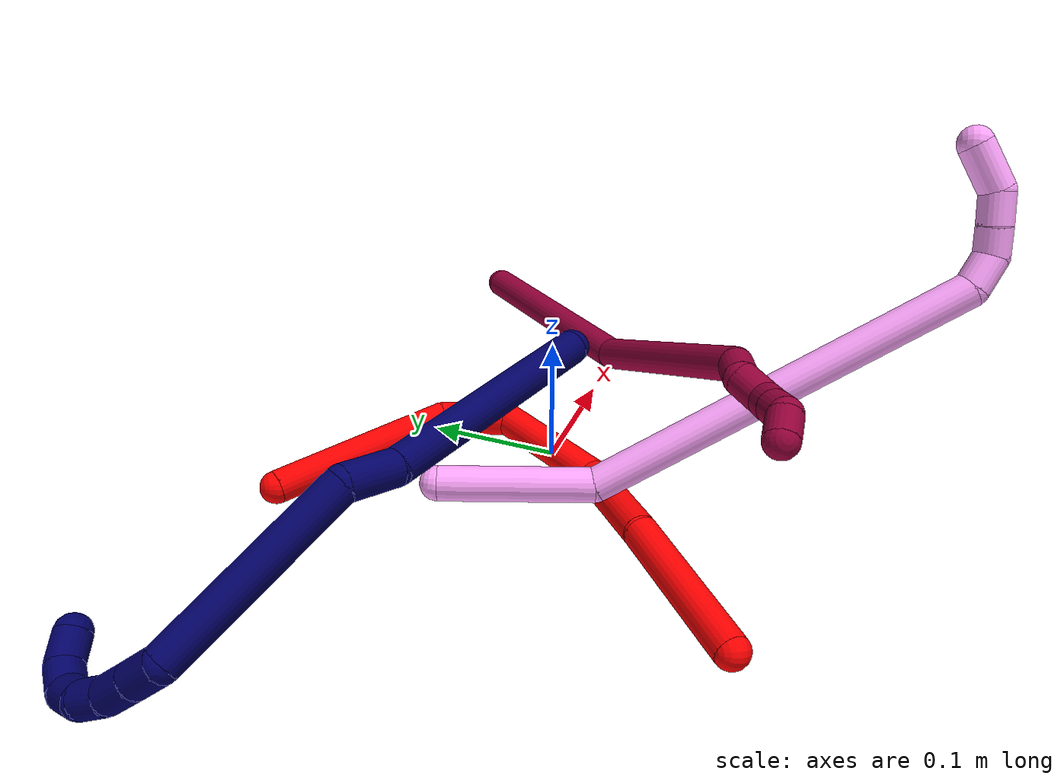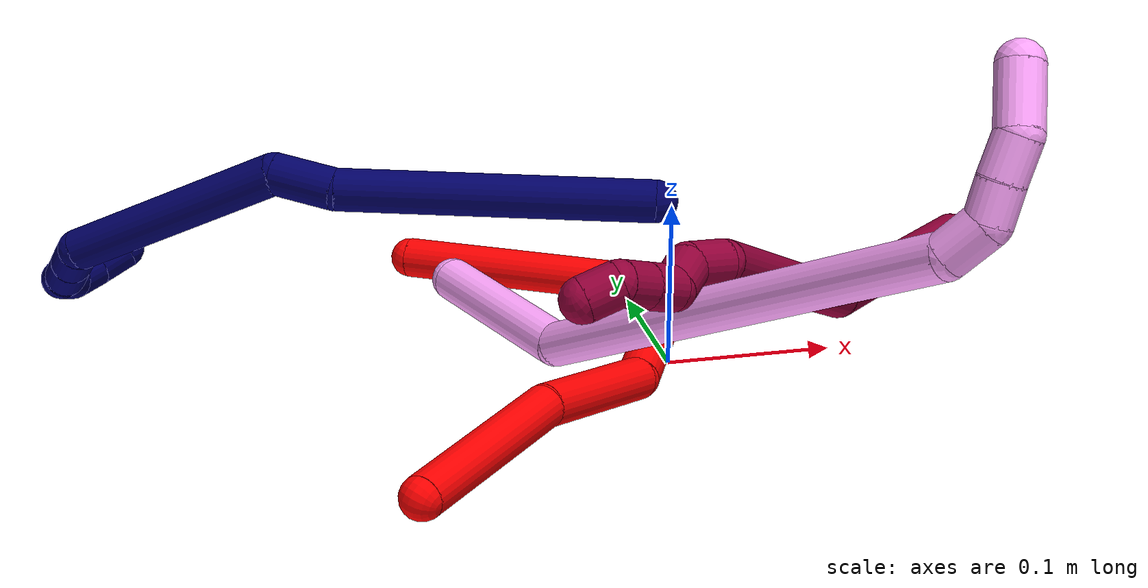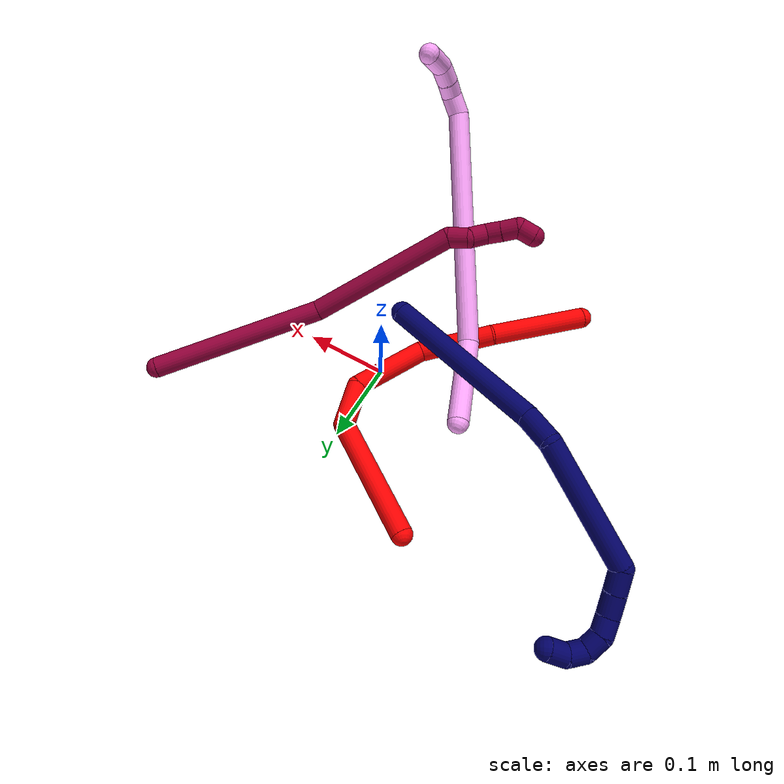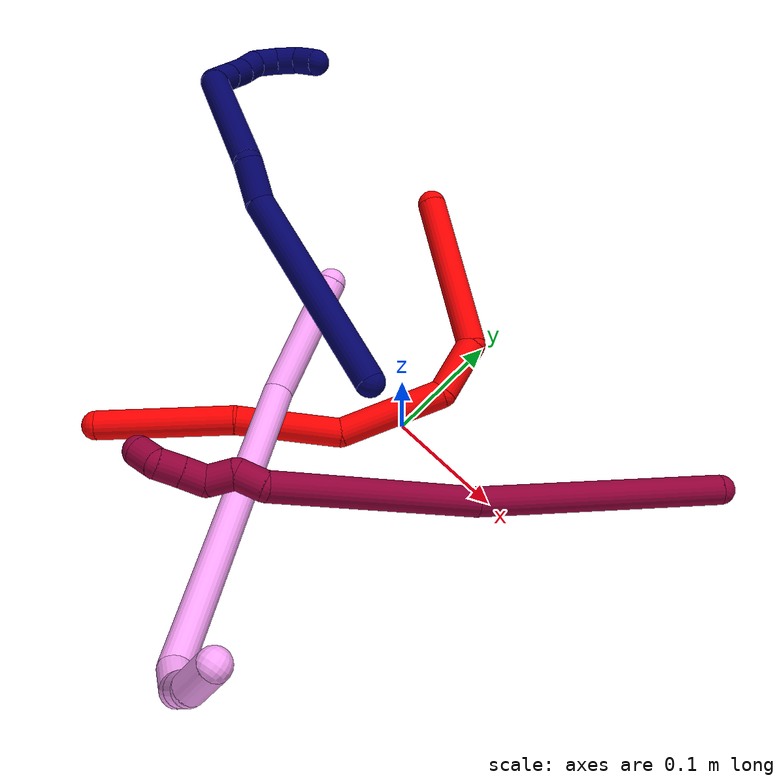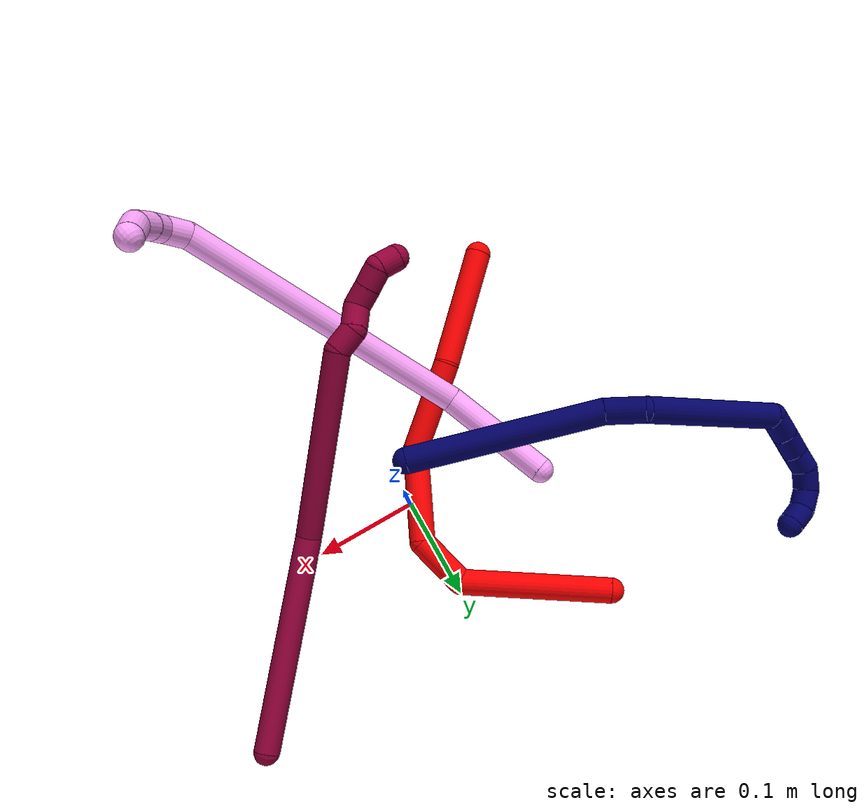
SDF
<sdf version="1.7">
 <world name="default">
  <model name="photoneo_s_sensor">
   <static>1</static>
   <pose>0 0 2 1.57079 1.57079 3.14159</pose>
   <link name="link">
    <inertial><mass>0.1</mass></inertial>
    <sensor name="sensor" type="depth">
     <update_rate>30</update_rate>
     <camera>
      <horizontal_fov>1.22</horizontal_fov>
      <image><width>1920</width><height>1200</height><format>B8G8R8</format></image>
      <clip><near>0.1</near><far>4</far></clip>
      <depth_camera><output>points</output></depth_camera>
     </camera>
     <plugin name="camera_plugin" filename="libgazebo_ros_depth_camera.so">
      <baseline>0.2</baseline>
      <alwaysOn>1</alwaysOn>
      <updateRate>0.0</updateRate>
      <cameraName>camera_ir</cameraName>
      <imageTopicName>/camera/color/image_raw</imageTopicName>
      <cameraInfoTopicName>/camera/color/camera_info</cameraInfoTopicName>
      <depthImageTopicName>/camera/depth/image_raw</depthImageTopicName>
      <depthImageCameraInfoTopicName>/camera/depth/camera_info</depthImageCameraInfoTopicName>
      <pointCloudTopicName>/camera/depth/points</pointCloudTopicName>
      <frameName>fr_optical</frameName>
      <pointCloudCutoff>0.1</pointCloudCutoff>
      <pointCloudCutoffMax>2.0</pointCloudCutoffMax>
      <distortionK1>0</distortionK1>
      <distortionK2>0</distortionK2>
      <distortionK3>0</distortionK3>
      <distortionT1>0</distortionT1>
      <distortionT2>0</distortionT2>
      <CxPrime>0</CxPrime>
      <Cx>0</Cx>
      <Cy>0</Cy>
      <focalLength>0</focalLength>
      <hackBaseline>0</hackBaseline>
     </plugin>
    </sensor>
   </link>
  </model>
  <model name="bin">
   <static>1</static>
   <link name="bottom">
    <collision name="collision-bottom">
     <pose>0 0 -0.01 0 -0 0</pose>
     <geometry><box><size>0.8 0.6 0.02</size></box></geometry>
     <surface>
      <friction><ode><mu>100</mu><mu2>100</mu2></ode></friction>
      <contact><collide_bitmask>65535</collide_bitmask></contact>
     </surface>
    </collision>
   </link>
   <link name="west_wall">
    <collision name="collision-west_wall">
     <pose>-0.41 0 0.1 0 -0 0</pose>
     <geometry><box><size>0.02 0.6 0.2</size></box></geometry>
     <surface>
      <friction><ode><mu>100</mu><mu2>100</mu2></ode></friction>
      <contact><collide_bitmask>65535</collide_bitmask></contact>
     </surface>
    </collision>
   </link>
   <link name="east_wall">
    <collision name="collision-east_wall">
     <pose>0.41 0 0.1 0 -0 0</pose>
     <geometry><box><size>0.02 0.6 0.2</size></box></geometry>
     <surface>
      <friction><ode><mu>100</mu><mu2>100</mu2></ode></friction>
      <contact><collide_bitmask>65535</collide_bitmask></contact>
     </surface>
    </collision>
   </link>
   <link name="south_wall">
    <collision name="collision-south_wall">
     <pose>0 -0.31 0.1 0 -0 0</pose>
     <geometry><box><size>0.8 0.02 0.2</size></box></geometry>
     <surface>
      <friction><ode><mu>100</mu><mu2>100</mu2></ode></friction>
      <contact><collide_bitmask>65535</collide_bitmask></contact>
     </surface>
    </collision>
   </link>
   <link name="north_wall">
    <collision name="collision-north_wall">
     <pose>0 0.31 0.1 0 -0 0</pose>
     <geometry><box><size>0.8 0.02 0.2</size></box></geometry>
     <surface>
      <friction><ode><mu>100</mu><mu2>100</mu2></ode></friction>
      <contact><collide_bitmask>65535</collide_bitmask></contact>
     </surface>
    </collision>
   </link>
  </model>
  <model name="2">
   <static>0</static>
   <link name="2">
    <collision name="collision-cylinder-e_1_1_4">
     <pose>0.024405 0.009519 -0.068071 -3.00265 0.341184 -2.37383</pose>
     <geometry><cylinder><radius>0.0125</radius><length>0.145875</length></cylinder></geometry>
     <surface>
      <friction><ode><mu>1.16</mu><mu2>1.16</mu2><slip1>0</slip1><slip2>0</slip2></ode></friction>
      <contact><ode><kp>1e+06</kp><kd>1</kd><max_vel>0</max_vel><min_depth>0.001</min_depth></ode></contact>
     </surface>
    </collision>
    <visual name="visual-cylinder-e_1_1_4">
     <pose>0.024405 0.009519 -0.068071 -3.00265 0.341184 -2.37383</pose>
     <geometry><cylinder><radius>0.0125</radius><length>0.145875</length></cylinder></geometry>
     <material><ambient>1 0 0 1</ambient></material>
    </visual>
    <collision name="collision-cylinder-e_2_4_5">
     <pose>0.049764 0.005208 -0.158752 2.59263 0.035986 0.127635</pose>
     <geometry><cylinder><radius>0.0125</radius><length>0.053043</length></cylinder></geometry>
     <surface>
      <friction><ode><mu>1.16</mu><mu2>1.16</mu2><slip1>0</slip1><slip2>0</slip2></ode></friction>
      <contact><ode><kp>1e+06</kp><kd>1</kd><max_vel>0</max_vel><min_depth>0.001</min_depth></ode></contact>
     </surface>
    </collision>
    <visual name="visual-cylinder-e_2_4_5">
     <pose>0.049764 0.005208 -0.158752 2.59263 0.035986 0.127635</pose>
     <geometry><cylinder><radius>0.0125</radius><length>0.053043</length></cylinder></geometry>
     <material><ambient>1 0 0 1</ambient></material>
    </visual>
    <collision name="collision-cylinder-e_3_5_6">
     <pose>0.035 -0.048473 -0.199524 1.99843 -0.344603 -0.528476</pose>
     <geometry><cylinder><radius>0.0125</radius><length>0.093059</length></cylinder></geometry>
     <surface>
      <friction><ode><mu>1.16</mu><mu2>1.16</mu2><slip1>0</slip1><slip2>0</slip2></ode></friction>
      <contact><ode><kp>1e+06</kp><kd>1</kd><max_vel>0</max_vel><min_depth>0.001</min_depth></ode></contact>
     </surface>
    </collision>
    <visual name="visual-cylinder-e_3_5_6">
     <pose>0.035 -0.048473 -0.199524 1.99843 -0.344603 -0.528476</pose>
     <geometry><cylinder><radius>0.0125</radius><length>0.093059</length></cylinder></geometry>
     <material><ambient>1 0 0 1</ambient></material>
    </visual>
    <collision name="collision-cylinder-e_4_6_7">
     <pose>0.007929 -0.131804 -0.21422 1.49125 -0.254602 -0.235301</pose>
     <geometry><cylinder><radius>0.0125</radius><length>0.090143</length></cylinder></geometry>
     <surface>
      <friction><ode><mu>1.16</mu><mu2>1.16</mu2><slip1>0</slip1><slip2>0</slip2></ode></friction>
      <contact><ode><kp>1e+06</kp><kd>1</kd><max_vel>0</max_vel><min_depth>0.001</min_depth></ode></contact>
     </surface>
    </collision>
    <visual name="visual-cylinder-e_4_6_7">
     <pose>0.007929 -0.131804 -0.21422 1.49125 -0.254602 -0.235301</pose>
     <geometry><cylinder><radius>0.0125</radius><length>0.090143</length></cylinder></geometry>
     <material><ambient>1 0 0 1</ambient></material>
    </visual>
    <collision name="collision-cylinder-e_5_7_2">
     <pose>-0.028571 -0.228477 -0.214228 1.63601 -0.44082 -0.469499</pose>
     <geometry><cylinder><radius>0.0125</radius><length>0.11788</length></cylinder></geometry>
     <surface>
      <friction><ode><mu>1.16</mu><mu2>1.16</mu2><slip1>0</slip1><slip2>0</slip2></ode></friction>
      <contact><ode><kp>1e+06</kp><kd>1</kd><max_vel>0</max_vel><min_depth>0.001</min_depth></ode></contact>
     </surface>
    </collision>
    <visual name="visual-cylinder-e_5_7_2">
     <pose>-0.028571 -0.228477 -0.214228 1.63601 -0.44082 -0.469499</pose>
     <geometry><cylinder><radius>0.0125</radius><length>0.11788</length></cylinder></geometry>
     <material><ambient>1 0 0 1</ambient></material>
    </visual>
    <collision name="collision-sphere-2">
     <pose>-0.05372 -0.281669 -0.217702 0 -0 0</pose>
     <geometry><sphere><radius>0.0125</radius></sphere></geometry>
     <surface>
      <friction><ode><mu>1.16</mu><mu2>1.16</mu2><slip1>0</slip1><slip2>0</slip2></ode></friction>
      <contact><ode><kp>1e+06</kp><kd>1</kd><max_vel>0</max_vel><min_depth>0.001</min_depth></ode></contact>
     </surface>
    </collision>
    <visual name="visual-sphere-2">
     <pose>-0.05372 -0.281669 -0.217702 0 -0 0</pose>
     <geometry><sphere><radius>0.0125</radius></sphere></geometry>
     <material><ambient>1 0 0 1</ambient></material>
    </visual>
    <collision name="collision-sphere-7">
     <pose>-0.003423 -0.175285 -0.210754 0 -0 0</pose>
     <geometry><sphere><radius>0.0125</radius></sphere></geometry>
     <surface>
      <friction><ode><mu>1.16</mu><mu2>1.16</mu2><slip1>0</slip1><slip2>0</slip2></ode></friction>
      <contact><ode><kp>1e+06</kp><kd>1</kd><max_vel>0</max_vel><min_depth>0.001</min_depth></ode></contact>
     </surface>
    </collision>
    <visual name="visual-sphere-7">
     <pose>-0.003423 -0.175285 -0.210754 0 -0 0</pose>
     <geometry><sphere><radius>0.0125</radius></sphere></geometry>
     <material><ambient>1 0 0 1</ambient></material>
    </visual>
    <collision name="collision-sphere-6">
     <pose>0.019281 -0.088323 -0.217686 0 -0 0</pose>
     <geometry><sphere><radius>0.0125</radius></sphere></geometry>
     <surface>
      <friction><ode><mu>1.16</mu><mu2>1.16</mu2><slip1>0</slip1><slip2>0</slip2></ode></friction>
      <contact><ode><kp>1e+06</kp><kd>1</kd><max_vel>0</max_vel><min_depth>0.001</min_depth></ode></contact>
     </surface>
    </collision>
    <visual name="visual-sphere-6">
     <pose>0.019281 -0.088323 -0.217686 0 -0 0</pose>
     <geometry><sphere><radius>0.0125</radius></sphere></geometry>
     <material><ambient>1 0 0 1</ambient></material>
    </visual>
    <collision name="collision-sphere-5">
     <pose>0.050718 -0.008622 -0.181361 0 -0 0</pose>
     <geometry><sphere><radius>0.0125</radius></sphere></geometry>
     <surface>
      <friction><ode><mu>1.16</mu><mu2>1.16</mu2><slip1>0</slip1><slip2>0</slip2></ode></friction>
      <contact><ode><kp>1e+06</kp><kd>1</kd><max_vel>0</max_vel><min_depth>0.001</min_depth></ode></contact>
     </surface>
    </collision>
    <visual name="visual-sphere-5">
     <pose>0.050718 -0.008622 -0.181361 0 -0 0</pose>
     <geometry><sphere><radius>0.0125</radius></sphere></geometry>
     <material><ambient>1 0 0 1</ambient></material>
    </visual>
    <collision name="collision-sphere-1">
     <geometry><sphere><radius>0.0125</radius></sphere></geometry>
     <surface>
      <friction><ode><mu>1.16</mu><mu2>1.16</mu2><slip1>0</slip1><slip2>0</slip2></ode></friction>
      <contact><ode><kp>1e+06</kp><kd>1</kd><max_vel>0</max_vel><min_depth>0.001</min_depth></ode></contact>
     </surface>
    </collision>
    <visual name="visual-sphere-1">
     <geometry><sphere><radius>0.0125</radius></sphere></geometry>
     <material><ambient>1 0 0 1</ambient></material>
    </visual>
    <collision name="collision-sphere-4">
     <pose>0.04881 0.019038 -0.136142 0 -0 0</pose>
     <geometry><sphere><radius>0.0125</radius></sphere></geometry>
     <surface>
      <friction><ode><mu>1.16</mu><mu2>1.16</mu2><slip1>0</slip1><slip2>0</slip2></ode></friction>
      <contact><ode><kp>1e+06</kp><kd>1</kd><max_vel>0</max_vel><min_depth>0.001</min_depth></ode></contact>
     </surface>
    </collision>
    <visual name="visual-sphere-4">
     <pose>0.04881 0.019038 -0.136142 0 -0 0</pose>
     <geometry><sphere><radius>0.0125</radius></sphere></geometry>
     <material><ambient>1 0 0 1</ambient></material>
    </visual>
    <inertial>
     <pose>0.013607 -0.08332 -0.162963 0 -0 0</pose>
     <mass>0.5</mass>
     <inertia>
      <ixx>-0.000214</ixx>
      <ixy>0</ixy>
      <ixz>0</ixz>
      <iyy>-0.000101</iyy>
      <iyz>0</iyz>
      <izz>0.000218</izz>
     </inertia>
    </inertial>
   </link>
   <pose>-0.127747 0.170941 0.012446 -1.02322 -1.0963 0.243867</pose>
  </model>
  <model name="4">
   <static>0</static>
   <link name="4">
    <collision name="collision-cylinder-e_1_1_4">
     <pose>-0.001293 -0.00941 0.05392 0.172783 -0.023622 -0.002046</pose>
     <geometry><cylinder><radius>0.0125</radius><length>0.109501</length></cylinder></geometry>
     <surface>
      <friction><ode><mu>1.16</mu><mu2>1.16</mu2><slip1>0</slip1><slip2>0</slip2></ode></friction>
      <contact><ode><kp>1e+06</kp><kd>1</kd><max_vel>0</max_vel><min_depth>0.001</min_depth></ode></contact>
     </surface>
    </collision>
    <visual name="visual-cylinder-e_1_1_4">
     <pose>-0.001293 -0.00941 0.05392 0.172783 -0.023622 -0.002046</pose>
     <geometry><cylinder><radius>0.0125</radius><length>0.109501</length></cylinder></geometry>
     <material><ambient>1 0.65098 0.996078 1</ambient></material>
    </visual>
    <collision name="collision-cylinder-e_2_4_5">
     <pose>0.058276 -0.069571 0.227264 0.401836 0.438577 0.090721</pose>
     <geometry><cylinder><radius>0.0125</radius><length>0.286647</length></cylinder></geometry>
     <surface>
      <friction><ode><mu>1.16</mu><mu2>1.16</mu2><slip1>0</slip1><slip2>0</slip2></ode></friction>
      <contact><ode><kp>1e+06</kp><kd>1</kd><max_vel>0</max_vel><min_depth>0.001</min_depth></ode></contact>
     </surface>
    </collision>
    <visual name="visual-cylinder-e_2_4_5">
     <pose>0.058276 -0.069571 0.227264 0.401836 0.438577 0.090721</pose>
     <geometry><cylinder><radius>0.0125</radius><length>0.286647</length></cylinder></geometry>
     <material><ambient>1 0.65098 0.996078 1</ambient></material>
    </visual>
    <collision name="collision-cylinder-e_3_5_6">
     <pose>0.127843 -0.128018 0.352278 0.942526 0.740968 0.390792</pose>
     <geometry><cylinder><radius>0.0125</radius><length>0.02579</length></cylinder></geometry>
     <surface>
      <friction><ode><mu>1.16</mu><mu2>1.16</mu2><slip1>0</slip1><slip2>0</slip2></ode></friction>
      <contact><ode><kp>1e+06</kp><kd>1</kd><max_vel>0</max_vel><min_depth>0.001</min_depth></ode></contact>
     </surface>
    </collision>
    <visual name="visual-cylinder-e_3_5_6">
     <pose>0.127843 -0.128018 0.352278 0.942526 0.740968 0.390792</pose>
     <geometry><cylinder><radius>0.0125</radius><length>0.02579</length></cylinder></geometry>
     <material><ambient>1 0.65098 0.996078 1</ambient></material>
    </visual>
    <collision name="collision-cylinder-e_4_6_7">
     <pose>0.146143 -0.139611 0.357319 1.7114 1.18172 1.3154</pose>
     <geometry><cylinder><radius>0.0125</radius><length>0.020744</length></cylinder></geometry>
     <surface>
      <friction><ode><mu>1.16</mu><mu2>1.16</mu2><slip1>0</slip1><slip2>0</slip2></ode></friction>
      <contact><ode><kp>1e+06</kp><kd>1</kd><max_vel>0</max_vel><min_depth>0.001</min_depth></ode></contact>
     </surface>
    </collision>
    <visual name="visual-cylinder-e_4_6_7">
     <pose>0.146143 -0.139611 0.357319 1.7114 1.18172 1.3154</pose>
     <geometry><cylinder><radius>0.0125</radius><length>0.020744</length></cylinder></geometry>
     <material><ambient>1 0.65098 0.996078 1</ambient></material>
    </visual>
    <collision name="collision-cylinder-e_5_7_8">
     <pose>0.166018 -0.148533 0.355992 1.72388 1.11124 1.25331</pose>
     <geometry><cylinder><radius>0.0125</radius><length>0.022935</length></cylinder></geometry>
     <surface>
      <friction><ode><mu>1.16</mu><mu2>1.16</mu2><slip1>0</slip1><slip2>0</slip2></ode></friction>
      <contact><ode><kp>1e+06</kp><kd>1</kd><max_vel>0</max_vel><min_depth>0.001</min_depth></ode></contact>
     </surface>
    </collision>
    <visual name="visual-cylinder-e_5_7_8">
     <pose>0.166018 -0.148533 0.355992 1.72388 1.11124 1.25331</pose>
     <geometry><cylinder><radius>0.0125</radius><length>0.022935</length></cylinder></geometry>
     <material><ambient>1 0.65098 0.996078 1</ambient></material>
    </visual>
    <collision name="collision-cylinder-e_6_8_2">
     <pose>0.18951 -0.159674 0.346076 2.55203 0.876774 1.99215</pose>
     <geometry><cylinder><radius>0.0125</radius><length>0.034384</length></cylinder></geometry>
     <surface>
      <friction><ode><mu>1.16</mu><mu2>1.16</mu2><slip1>0</slip1><slip2>0</slip2></ode></friction>
      <contact><ode><kp>1e+06</kp><kd>1</kd><max_vel>0</max_vel><min_depth>0.001</min_depth></ode></contact>
     </surface>
    </collision>
    <visual name="visual-cylinder-e_6_8_2">
     <pose>0.18951 -0.159674 0.346076 2.55203 0.876774 1.99215</pose>
     <geometry><cylinder><radius>0.0125</radius><length>0.034384</length></cylinder></geometry>
     <material><ambient>1 0.65098 0.996078 1</ambient></material>
    </visual>
    <collision name="collision-sphere-2">
     <pose>0.202725 -0.165788 0.336936 0 -0 0</pose>
     <geometry><sphere><radius>0.0125</radius></sphere></geometry>
     <surface>
      <friction><ode><mu>1.16</mu><mu2>1.16</mu2><slip1>0</slip1><slip2>0</slip2></ode></friction>
      <contact><ode><kp>1e+06</kp><kd>1</kd><max_vel>0</max_vel><min_depth>0.001</min_depth></ode></contact>
     </surface>
    </collision>
    <visual name="visual-sphere-2">
     <pose>0.202725 -0.165788 0.336936 0 -0 0</pose>
     <geometry><sphere><radius>0.0125</radius></sphere></geometry>
     <material><ambient>1 0.65098 0.996078 1</ambient></material>
    </visual>
    <collision name="collision-sphere-4">
     <pose>-0.002586 -0.018821 0.107841 0 -0 0</pose>
     <geometry><sphere><radius>0.0125</radius></sphere></geometry>
     <surface>
      <friction><ode><mu>1.16</mu><mu2>1.16</mu2><slip1>0</slip1><slip2>0</slip2></ode></friction>
      <contact><ode><kp>1e+06</kp><kd>1</kd><max_vel>0</max_vel><min_depth>0.001</min_depth></ode></contact>
     </surface>
    </collision>
    <visual name="visual-sphere-4">
     <pose>-0.002586 -0.018821 0.107841 0 -0 0</pose>
     <geometry><sphere><radius>0.0125</radius></sphere></geometry>
     <material><ambient>1 0.65098 0.996078 1</ambient></material>
    </visual>
    <collision name="collision-sphere-1">
     <geometry><sphere><radius>0.0125</radius></sphere></geometry>
     <surface>
      <friction><ode><mu>1.16</mu><mu2>1.16</mu2><slip1>0</slip1><slip2>0</slip2></ode></friction>
      <contact><ode><kp>1e+06</kp><kd>1</kd><max_vel>0</max_vel><min_depth>0.001</min_depth></ode></contact>
     </surface>
    </collision>
    <visual name="visual-sphere-1">
     <geometry><sphere><radius>0.0125</radius></sphere></geometry>
     <material><ambient>1 0.65098 0.996078 1</ambient></material>
    </visual>
    <collision name="collision-sphere-8">
     <pose>0.176295 -0.15356 0.355216 0 -0 0</pose>
     <geometry><sphere><radius>0.0125</radius></sphere></geometry>
     <surface>
      <friction><ode><mu>1.16</mu><mu2>1.16</mu2><slip1>0</slip1><slip2>0</slip2></ode></friction>
      <contact><ode><kp>1e+06</kp><kd>1</kd><max_vel>0</max_vel><min_depth>0.001</min_depth></ode></contact>
     </surface>
    </collision>
    <visual name="visual-sphere-8">
     <pose>0.176295 -0.15356 0.355216 0 -0 0</pose>
     <geometry><sphere><radius>0.0125</radius></sphere></geometry>
     <material><ambient>1 0.65098 0.996078 1</ambient></material>
    </visual>
    <collision name="collision-sphere-5">
     <pose>0.119139 -0.12032 0.346686 0 -0 0</pose>
     <geometry><sphere><radius>0.0125</radius></sphere></geometry>
     <surface>
      <friction><ode><mu>1.16</mu><mu2>1.16</mu2><slip1>0</slip1><slip2>0</slip2></ode></friction>
      <contact><ode><kp>1e+06</kp><kd>1</kd><max_vel>0</max_vel><min_depth>0.001</min_depth></ode></contact>
     </surface>
    </collision>
    <visual name="visual-sphere-5">
     <pose>0.119139 -0.12032 0.346686 0 -0 0</pose>
     <geometry><sphere><radius>0.0125</radius></sphere></geometry>
     <material><ambient>1 0.65098 0.996078 1</ambient></material>
    </visual>
    <collision name="collision-sphere-6">
     <pose>0.136547 -0.135715 0.35787 0 -0 0</pose>
     <geometry><sphere><radius>0.0125</radius></sphere></geometry>
     <surface>
      <friction><ode><mu>1.16</mu><mu2>1.16</mu2><slip1>0</slip1><slip2>0</slip2></ode></friction>
      <contact><ode><kp>1e+06</kp><kd>1</kd><max_vel>0</max_vel><min_depth>0.001</min_depth></ode></contact>
     </surface>
    </collision>
    <visual name="visual-sphere-6">
     <pose>0.136547 -0.135715 0.35787 0 -0 0</pose>
     <geometry><sphere><radius>0.0125</radius></sphere></geometry>
     <material><ambient>1 0.65098 0.996078 1</ambient></material>
    </visual>
    <collision name="collision-sphere-7">
     <pose>0.15574 -0.143506 0.356767 0 -0 0</pose>
     <geometry><sphere><radius>0.0125</radius></sphere></geometry>
     <surface>
      <friction><ode><mu>1.16</mu><mu2>1.16</mu2><slip1>0</slip1><slip2>0</slip2></ode></friction>
      <contact><ode><kp>1e+06</kp><kd>1</kd><max_vel>0</max_vel><min_depth>0.001</min_depth></ode></contact>
     </surface>
    </collision>
    <visual name="visual-sphere-7">
     <pose>0.15574 -0.143506 0.356767 0 -0 0</pose>
     <geometry><sphere><radius>0.0125</radius></sphere></geometry>
     <material><ambient>1 0.65098 0.996078 1</ambient></material>
    </visual>
    <inertial>
     <pose>0.066431 -0.072134 0.21522 0 -0 0</pose>
     <mass>0.5</mass>
     <inertia>
      <ixx>0.002077</ixx>
      <ixy>0</ixy>
      <ixz>0</ixz>
      <iyy>0.002113</iyy>
      <iyz>0</iyz>
      <izz>-9.5e-05</izz>
     </inertia>
    </inertial>
   </link>
   <pose>-0.123316 0.038938 0.049262 -1.73248 -1.50564 -2.78228</pose>
  </model>
  <model name="7">
   <static>0</static>
   <link name="7">
    <collision name="collision-cylinder-e_1_1_4">
     <pose>-0.060302 0.00639 -0.069885 -3.05042 -0.709864 2.89665</pose>
     <geometry><cylinder><radius>0.0125</radius><length>0.185053</length></cylinder></geometry>
     <surface>
      <friction><ode><mu>1.16</mu><mu2>1.16</mu2><slip1>0</slip1><slip2>0</slip2></ode></friction>
      <contact><ode><kp>1e+06</kp><kd>1</kd><max_vel>0</max_vel><min_depth>0.001</min_depth></ode></contact>
     </surface>
    </collision>
    <visual name="visual-cylinder-e_1_1_4">
     <pose>-0.060302 0.00639 -0.069885 -3.05042 -0.709864 2.89665</pose>
     <geometry><cylinder><radius>0.0125</radius><length>0.185053</length></cylinder></geometry>
     <material><ambient>0.003922 0 0.403922 1</ambient></material>
    </visual>
    <collision name="collision-cylinder-e_2_4_5">
     <pose>-0.136162 0.011973 -0.150649 3.06762 -0.959275 -2.99956</pose>
     <geometry><cylinder><radius>0.0125</radius><length>0.038</length></cylinder></geometry>
     <surface>
      <friction><ode><mu>1.16</mu><mu2>1.16</mu2><slip1>0</slip1><slip2>0</slip2></ode></friction>
      <contact><ode><kp>1e+06</kp><kd>1</kd><max_vel>0</max_vel><min_depth>0.001</min_depth></ode></contact>
     </surface>
    </collision>
    <visual name="visual-cylinder-e_2_4_5">
     <pose>-0.136162 0.011973 -0.150649 3.06762 -0.959275 -2.99956</pose>
     <geometry><cylinder><radius>0.0125</radius><length>0.038</length></cylinder></geometry>
     <material><ambient>0.003922 0 0.403922 1</ambient></material>
    </visual>
    <collision name="collision-cylinder-e_3_5_6">
     <pose>-0.197354 0.047618 -0.201106 -2.39731 -0.703408 1.5091</pose>
     <geometry><cylinder><radius>0.0125</radius><length>0.141106</length></cylinder></geometry>
     <surface>
      <friction><ode><mu>1.16</mu><mu2>1.16</mu2><slip1>0</slip1><slip2>0</slip2></ode></friction>
      <contact><ode><kp>1e+06</kp><kd>1</kd><max_vel>0</max_vel><min_depth>0.001</min_depth></ode></contact>
     </surface>
    </collision>
    <visual name="visual-cylinder-e_3_5_6">
     <pose>-0.197354 0.047618 -0.201106 -2.39731 -0.703408 1.5091</pose>
     <geometry><cylinder><radius>0.0125</radius><length>0.141106</length></cylinder></geometry>
     <material><ambient>0.003922 0 0.403922 1</ambient></material>
    </visual>
    <collision name="collision-cylinder-e_4_6_7">
     <pose>-0.25139 0.093381 -0.238721 -1.36288 -0.723216 0.595313</pose>
     <geometry><cylinder><radius>0.0125</radius><length>0.02539</length></cylinder></geometry>
     <surface>
      <friction><ode><mu>1.16</mu><mu2>1.16</mu2><slip1>0</slip1><slip2>0</slip2></ode></friction>
      <contact><ode><kp>1e+06</kp><kd>1</kd><max_vel>0</max_vel><min_depth>0.001</min_depth></ode></contact>
     </surface>
    </collision>
    <visual name="visual-cylinder-e_4_6_7">
     <pose>-0.25139 0.093381 -0.238721 -1.36288 -0.723216 0.595313</pose>
     <geometry><cylinder><radius>0.0125</radius><length>0.02539</length></cylinder></geometry>
     <material><ambient>0.003922 0 0.403922 1</ambient></material>
    </visual>
    <collision name="collision-cylinder-e_5_7_8">
     <pose>-0.268159 0.111898 -0.234607 -1.3414 -0.724573 0.584215</pose>
     <geometry><cylinder><radius>0.0125</radius><length>0.025248</length></cylinder></geometry>
     <surface>
      <friction><ode><mu>1.16</mu><mu2>1.16</mu2><slip1>0</slip1><slip2>0</slip2></ode></friction>
      <contact><ode><kp>1e+06</kp><kd>1</kd><max_vel>0</max_vel><min_depth>0.001</min_depth></ode></contact>
     </surface>
    </collision>
    <visual name="visual-cylinder-e_5_7_8">
     <pose>-0.268159 0.111898 -0.234607 -1.3414 -0.724573 0.584215</pose>
     <geometry><cylinder><radius>0.0125</radius><length>0.025248</length></cylinder></geometry>
     <material><ambient>0.003922 0 0.403922 1</ambient></material>
    </visual>
    <collision name="collision-cylinder-e_6_8_9">
     <pose>-0.284762 0.126642 -0.229652 -1.10198 -0.924815 0.59442</pose>
     <geometry><cylinder><radius>0.0125</radius><length>0.020627</length></cylinder></geometry>
     <surface>
      <friction><ode><mu>1.16</mu><mu2>1.16</mu2><slip1>0</slip1><slip2>0</slip2></ode></friction>
      <contact><ode><kp>1e+06</kp><kd>1</kd><max_vel>0</max_vel><min_depth>0.001</min_depth></ode></contact>
     </surface>
    </collision>
    <visual name="visual-cylinder-e_6_8_9">
     <pose>-0.284762 0.126642 -0.229652 -1.10198 -0.924815 0.59442</pose>
     <geometry><cylinder><radius>0.0125</radius><length>0.020627</length></cylinder></geometry>
     <material><ambient>0.003922 0 0.403922 1</ambient></material>
    </visual>
    <collision name="collision-cylinder-e_7_9_10">
     <pose>-0.299219 0.137275 -0.219529 -0.608155 -0.609225 0.196685</pose>
     <geometry><cylinder><radius>0.0125</radius><length>0.021746</length></cylinder></geometry>
     <surface>
      <friction><ode><mu>1.16</mu><mu2>1.16</mu2><slip1>0</slip1><slip2>0</slip2></ode></friction>
      <contact><ode><kp>1e+06</kp><kd>1</kd><max_vel>0</max_vel><min_depth>0.001</min_depth></ode></contact>
     </surface>
    </collision>
    <visual name="visual-cylinder-e_7_9_10">
     <pose>-0.299219 0.137275 -0.219529 -0.608155 -0.609225 0.196685</pose>
     <geometry><cylinder><radius>0.0125</radius><length>0.021746</length></cylinder></geometry>
     <material><ambient>0.003922 0 0.403922 1</ambient></material>
    </visual>
    <collision name="collision-cylinder-e_8_10_11">
     <pose>-0.30888 0.141946 -0.20227 0.042585 -0.332734 -0.007152</pose>
     <geometry><cylinder><radius>0.0125</radius><length>0.021054</length></cylinder></geometry>
     <surface>
      <friction><ode><mu>1.16</mu><mu2>1.16</mu2><slip1>0</slip1><slip2>0</slip2></ode></friction>
      <contact><ode><kp>1e+06</kp><kd>1</kd><max_vel>0</max_vel><min_depth>0.001</min_depth></ode></contact>
     </surface>
    </collision>
    <visual name="visual-cylinder-e_8_10_11">
     <pose>-0.30888 0.141946 -0.20227 0.042585 -0.332734 -0.007152</pose>
     <geometry><cylinder><radius>0.0125</radius><length>0.021054</length></cylinder></geometry>
     <material><ambient>0.003922 0 0.403922 1</ambient></material>
    </visual>
    <collision name="collision-cylinder-e_9_11_2">
     <pose>-0.311856 0.137417 -0.182256 0.38699 0.042425 0.008314</pose>
     <geometry><cylinder><radius>0.0125</radius><length>0.021776</length></cylinder></geometry>
     <surface>
      <friction><ode><mu>1.16</mu><mu2>1.16</mu2><slip1>0</slip1><slip2>0</slip2></ode></friction>
      <contact><ode><kp>1e+06</kp><kd>1</kd><max_vel>0</max_vel><min_depth>0.001</min_depth></ode></contact>
     </surface>
    </collision>
    <visual name="visual-cylinder-e_9_11_2">
     <pose>-0.311856 0.137417 -0.182256 0.38699 0.042425 0.008314</pose>
     <geometry><cylinder><radius>0.0125</radius><length>0.021776</length></cylinder></geometry>
     <material><ambient>0.003922 0 0.403922 1</ambient></material>
    </visual>
    <collision name="collision-sphere-2">
     <pose>-0.311394 0.133312 -0.172182 0 -0 0</pose>
     <geometry><sphere><radius>0.0125</radius></sphere></geometry>
     <surface>
      <friction><ode><mu>1.16</mu><mu2>1.16</mu2><slip1>0</slip1><slip2>0</slip2></ode></friction>
      <contact><ode><kp>1e+06</kp><kd>1</kd><max_vel>0</max_vel><min_depth>0.001</min_depth></ode></contact>
     </surface>
    </collision>
    <visual name="visual-sphere-2">
     <pose>-0.311394 0.133312 -0.172182 0 -0 0</pose>
     <geometry><sphere><radius>0.0125</radius></sphere></geometry>
     <material><ambient>0.003922 0 0.403922 1</ambient></material>
    </visual>
    <collision name="collision-sphere-11">
     <pose>-0.312318 0.141523 -0.192329 0 -0 0</pose>
     <geometry><sphere><radius>0.0125</radius></sphere></geometry>
     <surface>
      <friction><ode><mu>1.16</mu><mu2>1.16</mu2><slip1>0</slip1><slip2>0</slip2></ode></friction>
      <contact><ode><kp>1e+06</kp><kd>1</kd><max_vel>0</max_vel><min_depth>0.001</min_depth></ode></contact>
     </surface>
    </collision>
    <visual name="visual-sphere-11">
     <pose>-0.312318 0.141523 -0.192329 0 -0 0</pose>
     <geometry><sphere><radius>0.0125</radius></sphere></geometry>
     <material><ambient>0.003922 0 0.403922 1</ambient></material>
    </visual>
    <collision name="collision-sphere-10">
     <pose>-0.305441 0.14237 -0.212211 0 -0 0</pose>
     <geometry><sphere><radius>0.0125</radius></sphere></geometry>
     <surface>
      <friction><ode><mu>1.16</mu><mu2>1.16</mu2><slip1>0</slip1><slip2>0</slip2></ode></friction>
      <contact><ode><kp>1e+06</kp><kd>1</kd><max_vel>0</max_vel><min_depth>0.001</min_depth></ode></contact>
     </surface>
    </collision>
    <visual name="visual-sphere-10">
     <pose>-0.305441 0.14237 -0.212211 0 -0 0</pose>
     <geometry><sphere><radius>0.0125</radius></sphere></geometry>
     <material><ambient>0.003922 0 0.403922 1</ambient></material>
    </visual>
    <collision name="collision-sphere-9">
     <pose>-0.292997 0.13218 -0.226847 0 -0 0</pose>
     <geometry><sphere><radius>0.0125</radius></sphere></geometry>
     <surface>
      <friction><ode><mu>1.16</mu><mu2>1.16</mu2><slip1>0</slip1><slip2>0</slip2></ode></friction>
      <contact><ode><kp>1e+06</kp><kd>1</kd><max_vel>0</max_vel><min_depth>0.001</min_depth></ode></contact>
     </surface>
    </collision>
    <visual name="visual-sphere-9">
     <pose>-0.292997 0.13218 -0.226847 0 -0 0</pose>
     <geometry><sphere><radius>0.0125</radius></sphere></geometry>
     <material><ambient>0.003922 0 0.403922 1</ambient></material>
    </visual>
    <collision name="collision-sphere-4">
     <pose>-0.120605 0.012779 -0.139771 0 -0 0</pose>
     <geometry><sphere><radius>0.0125</radius></sphere></geometry>
     <surface>
      <friction><ode><mu>1.16</mu><mu2>1.16</mu2><slip1>0</slip1><slip2>0</slip2></ode></friction>
      <contact><ode><kp>1e+06</kp><kd>1</kd><max_vel>0</max_vel><min_depth>0.001</min_depth></ode></contact>
     </surface>
    </collision>
    <visual name="visual-sphere-4">
     <pose>-0.120605 0.012779 -0.139771 0 -0 0</pose>
     <geometry><sphere><radius>0.0125</radius></sphere></geometry>
     <material><ambient>0.003922 0 0.403922 1</ambient></material>
    </visual>
    <collision name="collision-sphere-1">
     <geometry><sphere><radius>0.0125</radius></sphere></geometry>
     <surface>
      <friction><ode><mu>1.16</mu><mu2>1.16</mu2><slip1>0</slip1><slip2>0</slip2></ode></friction>
      <contact><ode><kp>1e+06</kp><kd>1</kd><max_vel>0</max_vel><min_depth>0.001</min_depth></ode></contact>
     </surface>
    </collision>
    <visual name="visual-sphere-1">
     <geometry><sphere><radius>0.0125</radius></sphere></geometry>
     <material><ambient>0.003922 0 0.403922 1</ambient></material>
    </visual>
    <collision name="collision-sphere-8">
     <pose>-0.276527 0.121103 -0.232457 0 -0 0</pose>
     <geometry><sphere><radius>0.0125</radius></sphere></geometry>
     <surface>
      <friction><ode><mu>1.16</mu><mu2>1.16</mu2><slip1>0</slip1><slip2>0</slip2></ode></friction>
      <contact><ode><kp>1e+06</kp><kd>1</kd><max_vel>0</max_vel><min_depth>0.001</min_depth></ode></contact>
     </surface>
    </collision>
    <visual name="visual-sphere-8">
     <pose>-0.276527 0.121103 -0.232457 0 -0 0</pose>
     <geometry><sphere><radius>0.0125</radius></sphere></geometry>
     <material><ambient>0.003922 0 0.403922 1</ambient></material>
    </visual>
    <collision name="collision-sphere-5">
     <pose>-0.151719 0.011167 -0.161528 0 -0 0</pose>
     <geometry><sphere><radius>0.0125</radius></sphere></geometry>
     <surface>
      <friction><ode><mu>1.16</mu><mu2>1.16</mu2><slip1>0</slip1><slip2>0</slip2></ode></friction>
      <contact><ode><kp>1e+06</kp><kd>1</kd><max_vel>0</max_vel><min_depth>0.001</min_depth></ode></contact>
     </surface>
    </collision>
    <visual name="visual-sphere-5">
     <pose>-0.151719 0.011167 -0.161528 0 -0 0</pose>
     <geometry><sphere><radius>0.0125</radius></sphere></geometry>
     <material><ambient>0.003922 0 0.403922 1</ambient></material>
    </visual>
    <collision name="collision-sphere-6">
     <pose>-0.242989 0.084069 -0.240685 0 -0 0</pose>
     <geometry><sphere><radius>0.0125</radius></sphere></geometry>
     <surface>
      <friction><ode><mu>1.16</mu><mu2>1.16</mu2><slip1>0</slip1><slip2>0</slip2></ode></friction>
      <contact><ode><kp>1e+06</kp><kd>1</kd><max_vel>0</max_vel><min_depth>0.001</min_depth></ode></contact>
     </surface>
    </collision>
    <visual name="visual-sphere-6">
     <pose>-0.242989 0.084069 -0.240685 0 -0 0</pose>
     <geometry><sphere><radius>0.0125</radius></sphere></geometry>
     <material><ambient>0.003922 0 0.403922 1</ambient></material>
    </visual>
    <collision name="collision-sphere-7">
     <pose>-0.259792 0.102693 -0.236756 0 -0 0</pose>
     <geometry><sphere><radius>0.0125</radius></sphere></geometry>
     <surface>
      <friction><ode><mu>1.16</mu><mu2>1.16</mu2><slip1>0</slip1><slip2>0</slip2></ode></friction>
      <contact><ode><kp>1e+06</kp><kd>1</kd><max_vel>0</max_vel><min_depth>0.001</min_depth></ode></contact>
     </surface>
    </collision>
    <visual name="visual-sphere-7">
     <pose>-0.259792 0.102693 -0.236756 0 -0 0</pose>
     <geometry><sphere><radius>0.0125</radius></sphere></geometry>
     <material><ambient>0.003922 0 0.403922 1</ambient></material>
    </visual>
    <inertial>
     <pose>-0.166018 0.050262 -0.153514 0 -0 0</pose>
     <mass>0.5</mass>
     <inertia>
      <ixx>-0.000119</ixx>
      <ixy>0</ixy>
      <ixz>0</ixz>
      <iyy>0.000927</iyy>
      <iyz>0</iyz>
      <izz>0.000336</izz>
     </inertia>
    </inertial>
   </link>
   <pose>-0.015118 -0.020556 0.111449 -1.56411 0.140852 -1.12947</pose>
  </model>
  <model name="8">
   <static>0</static>
   <link name="8">
    <collision name="collision-cylinder-e_1_1_4">
     <pose>0.042774 -0.044573 -0.083788 2.65269 0.423433 1.42248</pose>
     <geometry><cylinder><radius>0.0125</radius><length>0.208201</length></cylinder></geometry>
     <surface>
      <friction><ode><mu>1.16</mu><mu2>1.16</mu2><slip1>0</slip1><slip2>0</slip2></ode></friction>
      <contact><ode><kp>1e+06</kp><kd>1</kd><max_vel>0</max_vel><min_depth>0.001</min_depth></ode></contact>
     </surface>
    </collision>
    <visual name="visual-cylinder-e_1_1_4">
     <pose>0.042774 -0.044573 -0.083788 2.65269 0.423433 1.42248</pose>
     <geometry><cylinder><radius>0.0125</radius><length>0.208201</length></cylinder></geometry>
     <material><ambient>0.584314 0 0.227451 1</ambient></material>
    </visual>
    <collision name="collision-cylinder-e_2_4_5">
     <pose>0.09978 -0.117199 -0.253699 2.8267 0.155849 0.91418</pose>
     <geometry><cylinder><radius>0.0125</radius><length>0.183374</length></cylinder></geometry>
     <surface>
      <friction><ode><mu>1.16</mu><mu2>1.16</mu2><slip1>0</slip1><slip2>0</slip2></ode></friction>
      <contact><ode><kp>1e+06</kp><kd>1</kd><max_vel>0</max_vel><min_depth>0.001</min_depth></ode></contact>
     </surface>
    </collision>
    <visual name="visual-cylinder-e_2_4_5">
     <pose>0.09978 -0.117199 -0.253699 2.8267 0.155849 0.91418</pose>
     <geometry><cylinder><radius>0.0125</radius><length>0.183374</length></cylinder></geometry>
     <material><ambient>0.584314 0 0.227451 1</ambient></material>
    </visual>
    <collision name="collision-cylinder-e_3_5_6">
     <pose>0.12064 -0.14489 -0.349616 -3.1047 0.594668 -3.02132</pose>
     <geometry><cylinder><radius>0.0125</radius><length>0.023664</length></cylinder></geometry>
     <surface>
      <friction><ode><mu>1.16</mu><mu2>1.16</mu2><slip1>0</slip1><slip2>0</slip2></ode></friction>
      <contact><ode><kp>1e+06</kp><kd>1</kd><max_vel>0</max_vel><min_depth>0.001</min_depth></ode></contact>
     </surface>
    </collision>
    <visual name="visual-cylinder-e_3_5_6">
     <pose>0.12064 -0.14489 -0.349616 -3.1047 0.594668 -3.02132</pose>
     <geometry><cylinder><radius>0.0125</radius><length>0.023664</length></cylinder></geometry>
     <material><ambient>0.584314 0 0.227451 1</ambient></material>
    </visual>
    <collision name="collision-cylinder-e_4_6_7">
     <pose>0.134188 -0.151532 -0.36618 2.33921 0.617599 1.28959</pose>
     <geometry><cylinder><radius>0.0125</radius><length>0.023896</length></cylinder></geometry>
     <surface>
      <friction><ode><mu>1.16</mu><mu2>1.16</mu2><slip1>0</slip1><slip2>0</slip2></ode></friction>
      <contact><ode><kp>1e+06</kp><kd>1</kd><max_vel>0</max_vel><min_depth>0.001</min_depth></ode></contact>
     </surface>
    </collision>
    <visual name="visual-cylinder-e_4_6_7">
     <pose>0.134188 -0.151532 -0.36618 2.33921 0.617599 1.28959</pose>
     <geometry><cylinder><radius>0.0125</radius><length>0.023896</length></cylinder></geometry>
     <material><ambient>0.584314 0 0.227451 1</ambient></material>
    </visual>
    <collision name="collision-cylinder-e_5_7_8">
     <pose>0.145045 -0.1589 -0.382304 3.10272 0.398224 2.94954</pose>
     <geometry><cylinder><radius>0.0125</radius><length>0.020313</length></cylinder></geometry>
     <surface>
      <friction><ode><mu>1.16</mu><mu2>1.16</mu2><slip1>0</slip1><slip2>0</slip2></ode></friction>
      <contact><ode><kp>1e+06</kp><kd>1</kd><max_vel>0</max_vel><min_depth>0.001</min_depth></ode></contact>
     </surface>
    </collision>
    <visual name="visual-cylinder-e_5_7_8">
     <pose>0.145045 -0.1589 -0.382304 3.10272 0.398224 2.94954</pose>
     <geometry><cylinder><radius>0.0125</radius><length>0.020313</length></cylinder></geometry>
     <material><ambient>0.584314 0 0.227451 1</ambient></material>
    </visual>
    <collision name="collision-cylinder-e_6_8_9">
     <pose>0.152626 -0.15998 -0.400958 3.06467 0.372328 2.73854</pose>
     <geometry><cylinder><radius>0.0125</radius><length>0.020025</length></cylinder></geometry>
     <surface>
      <friction><ode><mu>1.16</mu><mu2>1.16</mu2><slip1>0</slip1><slip2>0</slip2></ode></friction>
      <contact><ode><kp>1e+06</kp><kd>1</kd><max_vel>0</max_vel><min_depth>0.001</min_depth></ode></contact>
     </surface>
    </collision>
    <visual name="visual-cylinder-e_6_8_9">
     <pose>0.152626 -0.15998 -0.400958 3.06467 0.372328 2.73854</pose>
     <geometry><cylinder><radius>0.0125</radius><length>0.020025</length></cylinder></geometry>
     <material><ambient>0.584314 0 0.227451 1</ambient></material>
    </visual>
    <collision name="collision-cylinder-e_7_9_2">
     <pose>0.165308 -0.158994 -0.414808 -2.78357 1.07753 -2.55371</pose>
     <geometry><cylinder><radius>0.0125</radius><length>0.020527</length></cylinder></geometry>
     <surface>
      <friction><ode><mu>1.16</mu><mu2>1.16</mu2><slip1>0</slip1><slip2>0</slip2></ode></friction>
      <contact><ode><kp>1e+06</kp><kd>1</kd><max_vel>0</max_vel><min_depth>0.001</min_depth></ode></contact>
     </surface>
    </collision>
    <visual name="visual-cylinder-e_7_9_2">
     <pose>0.165308 -0.158994 -0.414808 -2.78357 1.07753 -2.55371</pose>
     <geometry><cylinder><radius>0.0125</radius><length>0.020527</length></cylinder></geometry>
     <material><ambient>0.584314 0 0.227451 1</ambient></material>
    </visual>
    <collision name="collision-sphere-2">
     <pose>0.174348 -0.157291 -0.41936 0 -0 0</pose>
     <geometry><sphere><radius>0.0125</radius></sphere></geometry>
     <surface>
      <friction><ode><mu>1.16</mu><mu2>1.16</mu2><slip1>0</slip1><slip2>0</slip2></ode></friction>
      <contact><ode><kp>1e+06</kp><kd>1</kd><max_vel>0</max_vel><min_depth>0.001</min_depth></ode></contact>
     </surface>
    </collision>
    <visual name="visual-sphere-2">
     <pose>0.174348 -0.157291 -0.41936 0 -0 0</pose>
     <geometry><sphere><radius>0.0125</radius></sphere></geometry>
     <material><ambient>0.584314 0 0.227451 1</ambient></material>
    </visual>
    <collision name="collision-sphere-9">
     <pose>0.156268 -0.160697 -0.410257 0 -0 0</pose>
     <geometry><sphere><radius>0.0125</radius></sphere></geometry>
     <surface>
      <friction><ode><mu>1.16</mu><mu2>1.16</mu2><slip1>0</slip1><slip2>0</slip2></ode></friction>
      <contact><ode><kp>1e+06</kp><kd>1</kd><max_vel>0</max_vel><min_depth>0.001</min_depth></ode></contact>
     </surface>
    </collision>
    <visual name="visual-sphere-9">
     <pose>0.156268 -0.160697 -0.410257 0 -0 0</pose>
     <geometry><sphere><radius>0.0125</radius></sphere></geometry>
     <material><ambient>0.584314 0 0.227451 1</ambient></material>
    </visual>
    <collision name="collision-sphere-4">
     <pose>0.085548 -0.089147 -0.167577 0 -0 0</pose>
     <geometry><sphere><radius>0.0125</radius></sphere></geometry>
     <surface>
      <friction><ode><mu>1.16</mu><mu2>1.16</mu2><slip1>0</slip1><slip2>0</slip2></ode></friction>
      <contact><ode><kp>1e+06</kp><kd>1</kd><max_vel>0</max_vel><min_depth>0.001</min_depth></ode></contact>
     </surface>
    </collision>
    <visual name="visual-sphere-4">
     <pose>0.085548 -0.089147 -0.167577 0 -0 0</pose>
     <geometry><sphere><radius>0.0125</radius></sphere></geometry>
     <material><ambient>0.584314 0 0.227451 1</ambient></material>
    </visual>
    <collision name="collision-sphere-1">
     <geometry><sphere><radius>0.0125</radius></sphere></geometry>
     <surface>
      <friction><ode><mu>1.16</mu><mu2>1.16</mu2><slip1>0</slip1><slip2>0</slip2></ode></friction>
      <contact><ode><kp>1e+06</kp><kd>1</kd><max_vel>0</max_vel><min_depth>0.001</min_depth></ode></contact>
     </surface>
    </collision>
    <visual name="visual-sphere-1">
     <geometry><sphere><radius>0.0125</radius></sphere></geometry>
     <material><ambient>0.584314 0 0.227451 1</ambient></material>
    </visual>
    <collision name="collision-sphere-8">
     <pose>0.148984 -0.159264 -0.391659 0 -0 0</pose>
     <geometry><sphere><radius>0.0125</radius></sphere></geometry>
     <surface>
      <friction><ode><mu>1.16</mu><mu2>1.16</mu2><slip1>0</slip1><slip2>0</slip2></ode></friction>
      <contact><ode><kp>1e+06</kp><kd>1</kd><max_vel>0</max_vel><min_depth>0.001</min_depth></ode></contact>
     </surface>
    </collision>
    <visual name="visual-sphere-8">
     <pose>0.148984 -0.159264 -0.391659 0 -0 0</pose>
     <geometry><sphere><radius>0.0125</radius></sphere></geometry>
     <material><ambient>0.584314 0 0.227451 1</ambient></material>
    </visual>
    <collision name="collision-sphere-5">
     <pose>0.114011 -0.145251 -0.339821 0 -0 0</pose>
     <geometry><sphere><radius>0.0125</radius></sphere></geometry>
     <surface>
      <friction><ode><mu>1.16</mu><mu2>1.16</mu2><slip1>0</slip1><slip2>0</slip2></ode></friction>
      <contact><ode><kp>1e+06</kp><kd>1</kd><max_vel>0</max_vel><min_depth>0.001</min_depth></ode></contact>
     </surface>
    </collision>
    <visual name="visual-sphere-5">
     <pose>0.114011 -0.145251 -0.339821 0 -0 0</pose>
     <geometry><sphere><radius>0.0125</radius></sphere></geometry>
     <material><ambient>0.584314 0 0.227451 1</ambient></material>
    </visual>
    <collision name="collision-sphere-6">
     <pose>0.127269 -0.144528 -0.35941 0 -0 0</pose>
     <geometry><sphere><radius>0.0125</radius></sphere></geometry>
     <surface>
      <friction><ode><mu>1.16</mu><mu2>1.16</mu2><slip1>0</slip1><slip2>0</slip2></ode></friction>
      <contact><ode><kp>1e+06</kp><kd>1</kd><max_vel>0</max_vel><min_depth>0.001</min_depth></ode></contact>
     </surface>
    </collision>
    <visual name="visual-sphere-6">
     <pose>0.127269 -0.144528 -0.35941 0 -0 0</pose>
     <geometry><sphere><radius>0.0125</radius></sphere></geometry>
     <material><ambient>0.584314 0 0.227451 1</ambient></material>
    </visual>
    <collision name="collision-sphere-7">
     <pose>0.141107 -0.158536 -0.37295 0 -0 0</pose>
     <geometry><sphere><radius>0.0125</radius></sphere></geometry>
     <surface>
      <friction><ode><mu>1.16</mu><mu2>1.16</mu2><slip1>0</slip1><slip2>0</slip2></ode></friction>
      <contact><ode><kp>1e+06</kp><kd>1</kd><max_vel>0</max_vel><min_depth>0.001</min_depth></ode></contact>
     </surface>
    </collision>
    <visual name="visual-sphere-7">
     <pose>0.141107 -0.158536 -0.37295 0 -0 0</pose>
     <geometry><sphere><radius>0.0125</radius></sphere></geometry>
     <material><ambient>0.584314 0 0.227451 1</ambient></material>
    </visual>
    <inertial>
     <pose>0.08532 -0.095032 -0.2106 0 -0 0</pose>
     <mass>0.5</mass>
     <inertia>
      <ixx>0.001521</ixx>
      <ixy>0</ixy>
      <ixz>0</ixz>
      <iyy>0.000853</iyy>
      <iyz>0</iyz>
      <izz>5.5e-05</izz>
     </inertia>
    </inertial>
   </link>
   <pose>0.233741 0.141105 0.011497 2.81536 0.806338 -3.01348</pose>
  </model>
 </world>
</sdf>
